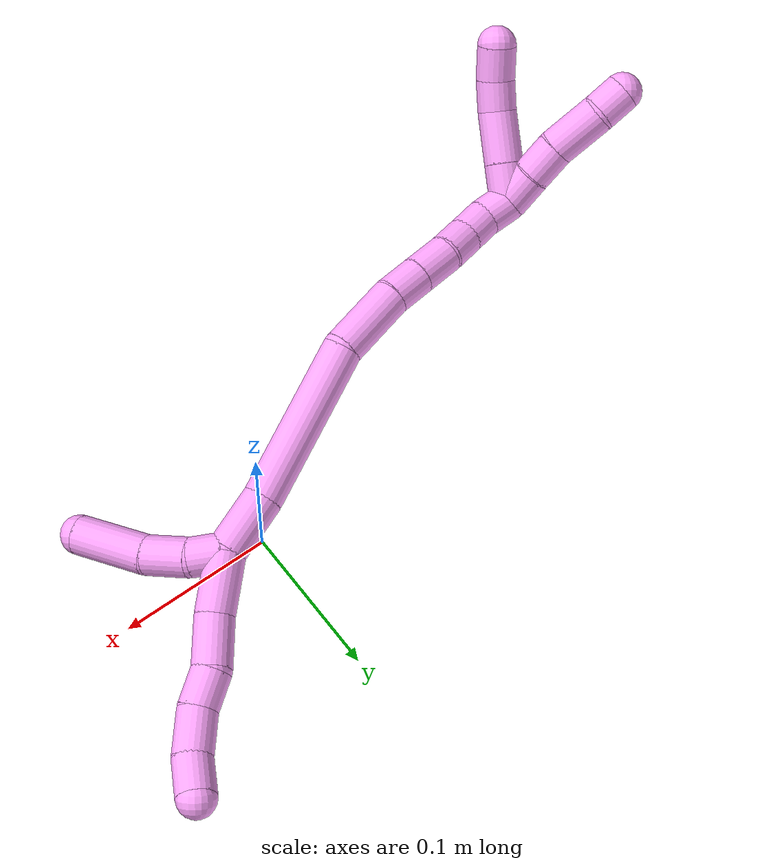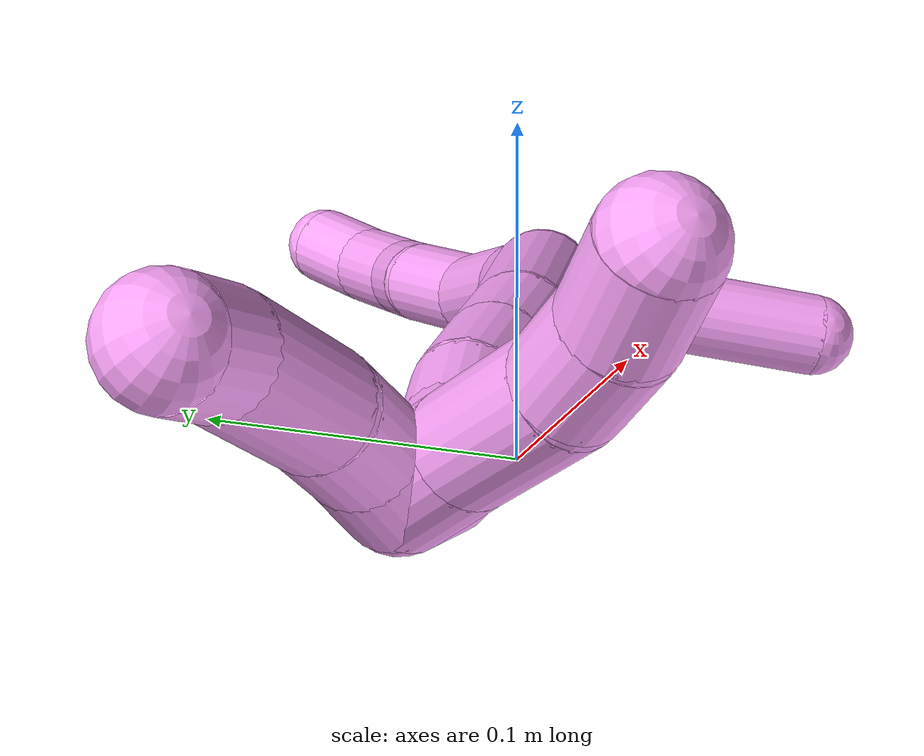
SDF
<sdf version="1.7">
 <world name="default">
  <model name="4">
   <static>0</static>
   <link name="4">
    <collision name="collision-cylinder-e_1_2_8">
     <pose>0.004906 0.003521 -0.018345 -2.95195 0.256826 -1.87193</pose>
     <geometry><cylinder><radius>0.0125</radius><length>0.038626</length></cylinder></geometry>
     <surface>
      <friction><ode><mu>1.16</mu><mu2>1.16</mu2><slip1>0</slip1><slip2>0</slip2></ode></friction>
      <contact><ode><kp>1e+06</kp><kd>1</kd><max_vel>0</max_vel><min_depth>0.001</min_depth></ode></contact>
     </surface>
    </collision>
    <visual name="visual-cylinder-e_1_2_8">
     <pose>0.004906 0.003521 -0.018345 -2.95195 0.256826 -1.87193</pose>
     <geometry><cylinder><radius>0.0125</radius><length>0.038626</length></cylinder></geometry>
     <material><ambient>1 0.65098 0.996078 1</ambient></material>
    </visual>
    <collision name="collision-cylinder-e_2_8_9">
     <pose>0.013044 0.014309 -0.051383 -2.68234 0.194728 -0.791596</pose>
     <geometry><cylinder><radius>0.0125</radius><length>0.033416</length></cylinder></geometry>
     <surface>
      <friction><ode><mu>1.16</mu><mu2>1.16</mu2><slip1>0</slip1><slip2>0</slip2></ode></friction>
      <contact><ode><kp>1e+06</kp><kd>1</kd><max_vel>0</max_vel><min_depth>0.001</min_depth></ode></contact>
     </surface>
    </collision>
    <visual name="visual-cylinder-e_2_8_9">
     <pose>0.013044 0.014309 -0.051383 -2.68234 0.194728 -0.791596</pose>
     <geometry><cylinder><radius>0.0125</radius><length>0.033416</length></cylinder></geometry>
     <material><ambient>1 0.65098 0.996078 1</ambient></material>
    </visual>
    <collision name="collision-cylinder-e_3_9_10">
     <pose>0.021517 0.024427 -0.076619 -2.87741 0.447338 -2.08432</pose>
     <geometry><cylinder><radius>0.0125</radius><length>0.024225</length></cylinder></geometry>
     <surface>
      <friction><ode><mu>1.16</mu><mu2>1.16</mu2><slip1>0</slip1><slip2>0</slip2></ode></friction>
      <contact><ode><kp>1e+06</kp><kd>1</kd><max_vel>0</max_vel><min_depth>0.001</min_depth></ode></contact>
     </surface>
    </collision>
    <visual name="visual-cylinder-e_3_9_10">
     <pose>0.021517 0.024427 -0.076619 -2.87741 0.447338 -2.08432</pose>
     <geometry><cylinder><radius>0.0125</radius><length>0.024225</length></cylinder></geometry>
     <material><ambient>1 0.65098 0.996078 1</ambient></material>
    </visual>
    <collision name="collision-cylinder-e_4_10_11">
     <pose>0.030307 0.03364 -0.09963 -2.66984 0.248378 -0.958043</pose>
     <geometry><cylinder><radius>0.0125</radius><length>0.028883</length></cylinder></geometry>
     <surface>
      <friction><ode><mu>1.16</mu><mu2>1.16</mu2><slip1>0</slip1><slip2>0</slip2></ode></friction>
      <contact><ode><kp>1e+06</kp><kd>1</kd><max_vel>0</max_vel><min_depth>0.001</min_depth></ode></contact>
     </surface>
    </collision>
    <visual name="visual-cylinder-e_4_10_11">
     <pose>0.030307 0.03364 -0.09963 -2.66984 0.248378 -0.958043</pose>
     <geometry><cylinder><radius>0.0125</radius><length>0.028883</length></cylinder></geometry>
     <material><ambient>1 0.65098 0.996078 1</ambient></material>
    </visual>
    <collision name="collision-cylinder-e_5_11_6">
     <pose>0.03494 0.047875 -0.12165 -2.45219 0.087277 -0.242053</pose>
     <geometry><cylinder><radius>0.0125</radius><length>0.02485</length></cylinder></geometry>
     <surface>
      <friction><ode><mu>1.16</mu><mu2>1.16</mu2><slip1>0</slip1><slip2>0</slip2></ode></friction>
      <contact><ode><kp>1e+06</kp><kd>1</kd><max_vel>0</max_vel><min_depth>0.001</min_depth></ode></contact>
     </surface>
    </collision>
    <visual name="visual-cylinder-e_5_11_6">
     <pose>0.03494 0.047875 -0.12165 -2.45219 0.087277 -0.242053</pose>
     <geometry><cylinder><radius>0.0125</radius><length>0.02485</length></cylinder></geometry>
     <material><ambient>1 0.65098 0.996078 1</ambient></material>
    </visual>
    <collision name="collision-cylinder-e_1_2_12">
     <pose>0.009549 -0.005235 -0.001714 1.88716 1.04759 1.34564</pose>
     <geometry><cylinder><radius>0.0125</radius><length>0.022047</length></cylinder></geometry>
     <surface>
      <friction><ode><mu>1.16</mu><mu2>1.16</mu2><slip1>0</slip1><slip2>0</slip2></ode></friction>
      <contact><ode><kp>1e+06</kp><kd>1</kd><max_vel>0</max_vel><min_depth>0.001</min_depth></ode></contact>
     </surface>
    </collision>
    <visual name="visual-cylinder-e_1_2_12">
     <pose>0.009549 -0.005235 -0.001714 1.88716 1.04759 1.34564</pose>
     <geometry><cylinder><radius>0.0125</radius><length>0.022047</length></cylinder></geometry>
     <material><ambient>1 0.65098 0.996078 1</ambient></material>
    </visual>
    <collision name="collision-cylinder-e_2_12_13">
     <pose>0.030206 -0.019959 -0.003202 1.54708 0.863719 0.845823</pose>
     <geometry><cylinder><radius>0.0125</radius><length>0.029224</length></cylinder></geometry>
     <surface>
      <friction><ode><mu>1.16</mu><mu2>1.16</mu2><slip1>0</slip1><slip2>0</slip2></ode></friction>
      <contact><ode><kp>1e+06</kp><kd>1</kd><max_vel>0</max_vel><min_depth>0.001</min_depth></ode></contact>
     </surface>
    </collision>
    <visual name="visual-cylinder-e_2_12_13">
     <pose>0.030206 -0.019959 -0.003202 1.54708 0.863719 0.845823</pose>
     <geometry><cylinder><radius>0.0125</radius><length>0.029224</length></cylinder></geometry>
     <material><ambient>1 0.65098 0.996078 1</ambient></material>
    </visual>
    <collision name="collision-cylinder-e_3_13_5">
     <pose>0.058469 -0.04593 0.002287 1.26166 0.781089 0.584185</pose>
     <geometry><cylinder><radius>0.0125</radius><length>0.048729</length></cylinder></geometry>
     <surface>
      <friction><ode><mu>1.16</mu><mu2>1.16</mu2><slip1>0</slip1><slip2>0</slip2></ode></friction>
      <contact><ode><kp>1e+06</kp><kd>1</kd><max_vel>0</max_vel><min_depth>0.001</min_depth></ode></contact>
     </surface>
    </collision>
    <visual name="visual-cylinder-e_3_13_5">
     <pose>0.058469 -0.04593 0.002287 1.26166 0.781089 0.584185</pose>
     <geometry><cylinder><radius>0.0125</radius><length>0.048729</length></cylinder></geometry>
     <material><ambient>1 0.65098 0.996078 1</ambient></material>
    </visual>
    <collision name="collision-cylinder-e_1_2_14">
     <pose>-0.012795 -0.003283 0.014915 0.216649 -0.697369 -0.079028</pose>
     <geometry><cylinder><radius>0.0125</radius><length>0.039847</length></cylinder></geometry>
     <surface>
      <friction><ode><mu>1.16</mu><mu2>1.16</mu2><slip1>0</slip1><slip2>0</slip2></ode></friction>
      <contact><ode><kp>1e+06</kp><kd>1</kd><max_vel>0</max_vel><min_depth>0.001</min_depth></ode></contact>
     </surface>
    </collision>
    <visual name="visual-cylinder-e_1_2_14">
     <pose>-0.012795 -0.003283 0.014915 0.216649 -0.697369 -0.079028</pose>
     <geometry><cylinder><radius>0.0125</radius><length>0.039847</length></cylinder></geometry>
     <material><ambient>1 0.65098 0.996078 1</ambient></material>
    </visual>
    <collision name="collision-cylinder-e_2_14_15">
     <pose>-0.052658 -0.008033 0.074268 0.033016 -0.546862 -0.00926</pose>
     <geometry><cylinder><radius>0.0125</radius><length>0.104107</length></cylinder></geometry>
     <surface>
      <friction><ode><mu>1.16</mu><mu2>1.16</mu2><slip1>0</slip1><slip2>0</slip2></ode></friction>
      <contact><ode><kp>1e+06</kp><kd>1</kd><max_vel>0</max_vel><min_depth>0.001</min_depth></ode></contact>
     </surface>
    </collision>
    <visual name="visual-cylinder-e_2_14_15">
     <pose>-0.052658 -0.008033 0.074268 0.033016 -0.546862 -0.00926</pose>
     <geometry><cylinder><radius>0.0125</radius><length>0.104107</length></cylinder></geometry>
     <material><ambient>1 0.65098 0.996078 1</ambient></material>
    </visual>
    <collision name="collision-cylinder-e_3_15_16">
     <pose>-0.097229 -0.013265 0.134114 0.239568 -0.834533 -0.10661</pose>
     <geometry><cylinder><radius>0.0125</radius><length>0.047241</length></cylinder></geometry>
     <surface>
      <friction><ode><mu>1.16</mu><mu2>1.16</mu2><slip1>0</slip1><slip2>0</slip2></ode></friction>
      <contact><ode><kp>1e+06</kp><kd>1</kd><max_vel>0</max_vel><min_depth>0.001</min_depth></ode></contact>
     </surface>
    </collision>
    <visual name="visual-cylinder-e_3_15_16">
     <pose>-0.097229 -0.013265 0.134114 0.239568 -0.834533 -0.10661</pose>
     <geometry><cylinder><radius>0.0125</radius><length>0.047241</length></cylinder></geometry>
     <material><ambient>1 0.65098 0.996078 1</ambient></material>
    </visual>
    <collision name="collision-cylinder-e_4_16_17">
     <pose>-0.124397 -0.018867 0.155848 0.282882 -0.972666 -0.150278</pose>
     <geometry><cylinder><radius>0.0125</radius><length>0.023393</length></cylinder></geometry>
     <surface>
      <friction><ode><mu>1.16</mu><mu2>1.16</mu2><slip1>0</slip1><slip2>0</slip2></ode></friction>
      <contact><ode><kp>1e+06</kp><kd>1</kd><max_vel>0</max_vel><min_depth>0.001</min_depth></ode></contact>
     </surface>
    </collision>
    <visual name="visual-cylinder-e_4_16_17">
     <pose>-0.124397 -0.018867 0.155848 0.282882 -0.972666 -0.150278</pose>
     <geometry><cylinder><radius>0.0125</radius><length>0.023393</length></cylinder></geometry>
     <material><ambient>1 0.65098 0.996078 1</ambient></material>
    </visual>
    <collision name="collision-cylinder-e_5_17_18">
     <pose>-0.144486 -0.022785 0.16891 0.299335 -0.97598 -0.159746</pose>
     <geometry><cylinder><radius>0.0125</radius><length>0.025169</length></cylinder></geometry>
     <surface>
      <friction><ode><mu>1.16</mu><mu2>1.16</mu2><slip1>0</slip1><slip2>0</slip2></ode></friction>
      <contact><ode><kp>1e+06</kp><kd>1</kd><max_vel>0</max_vel><min_depth>0.001</min_depth></ode></contact>
     </surface>
    </collision>
    <visual name="visual-cylinder-e_5_17_18">
     <pose>-0.144486 -0.022785 0.16891 0.299335 -0.97598 -0.159746</pose>
     <geometry><cylinder><radius>0.0125</radius><length>0.025169</length></cylinder></geometry>
     <material><ambient>1 0.65098 0.996078 1</ambient></material>
    </visual>
    <collision name="collision-cylinder-e_6_18_19">
     <pose>-0.162775 -0.028215 0.18104 0.556001 -0.891815 -0.271169</pose>
     <geometry><cylinder><radius>0.0125</radius><length>0.020216</length></cylinder></geometry>
     <surface>
      <friction><ode><mu>1.16</mu><mu2>1.16</mu2><slip1>0</slip1><slip2>0</slip2></ode></friction>
      <contact><ode><kp>1e+06</kp><kd>1</kd><max_vel>0</max_vel><min_depth>0.001</min_depth></ode></contact>
     </surface>
    </collision>
    <visual name="visual-cylinder-e_6_18_19">
     <pose>-0.162775 -0.028215 0.18104 0.556001 -0.891815 -0.271169</pose>
     <geometry><cylinder><radius>0.0125</radius><length>0.020216</length></cylinder></geometry>
     <material><ambient>1 0.65098 0.996078 1</ambient></material>
    </visual>
    <collision name="collision-cylinder-e_7_19_20">
     <pose>-0.178445 -0.034007 0.192189 0.40121 -0.895187 -0.194627</pose>
     <geometry><cylinder><radius>0.0125</radius><length>0.020001</length></cylinder></geometry>
     <surface>
      <friction><ode><mu>1.16</mu><mu2>1.16</mu2><slip1>0</slip1><slip2>0</slip2></ode></friction>
      <contact><ode><kp>1e+06</kp><kd>1</kd><max_vel>0</max_vel><min_depth>0.001</min_depth></ode></contact>
     </surface>
    </collision>
    <visual name="visual-cylinder-e_7_19_20">
     <pose>-0.178445 -0.034007 0.192189 0.40121 -0.895187 -0.194627</pose>
     <geometry><cylinder><radius>0.0125</radius><length>0.020001</length></cylinder></geometry>
     <material><ambient>1 0.65098 0.996078 1</ambient></material>
    </visual>
    <collision name="collision-cylinder-e_8_20_1">
     <pose>-0.194695 -0.035742 0.203277 -0.131963 -1.0039 0.0725</pose>
     <geometry><cylinder><radius>0.0125</radius><length>0.020026</length></cylinder></geometry>
     <surface>
      <friction><ode><mu>1.16</mu><mu2>1.16</mu2><slip1>0</slip1><slip2>0</slip2></ode></friction>
      <contact><ode><kp>1e+06</kp><kd>1</kd><max_vel>0</max_vel><min_depth>0.001</min_depth></ode></contact>
     </surface>
    </collision>
    <visual name="visual-cylinder-e_8_20_1">
     <pose>-0.194695 -0.035742 0.203277 -0.131963 -1.0039 0.0725</pose>
     <geometry><cylinder><radius>0.0125</radius><length>0.020026</length></cylinder></geometry>
     <material><ambient>1 0.65098 0.996078 1</ambient></material>
    </visual>
    <collision name="collision-cylinder-e_1_1_21">
     <pose>-0.208862 -0.029747 0.21656 -0.586764 -0.539648 0.166716</pose>
     <geometry><cylinder><radius>0.0125</radius><length>0.022264</length></cylinder></geometry>
     <surface>
      <friction><ode><mu>1.16</mu><mu2>1.16</mu2><slip1>0</slip1><slip2>0</slip2></ode></friction>
      <contact><ode><kp>1e+06</kp><kd>1</kd><max_vel>0</max_vel><min_depth>0.001</min_depth></ode></contact>
     </surface>
    </collision>
    <visual name="visual-cylinder-e_1_1_21">
     <pose>-0.208862 -0.029747 0.21656 -0.586764 -0.539648 0.166716</pose>
     <geometry><cylinder><radius>0.0125</radius><length>0.022264</length></cylinder></geometry>
     <material><ambient>1 0.65098 0.996078 1</ambient></material>
    </visual>
    <collision name="collision-cylinder-e_2_21_22">
     <pose>-0.221088 -0.019752 0.232866 -0.51323 -0.596153 0.160887</pose>
     <geometry><cylinder><radius>0.0125</radius><length>0.023175</length></cylinder></geometry>
     <surface>
      <friction><ode><mu>1.16</mu><mu2>1.16</mu2><slip1>0</slip1><slip2>0</slip2></ode></friction>
      <contact><ode><kp>1e+06</kp><kd>1</kd><max_vel>0</max_vel><min_depth>0.001</min_depth></ode></contact>
     </surface>
    </collision>
    <visual name="visual-cylinder-e_2_21_22">
     <pose>-0.221088 -0.019752 0.232866 -0.51323 -0.596153 0.160887</pose>
     <geometry><cylinder><radius>0.0125</radius><length>0.023175</length></cylinder></geometry>
     <material><ambient>1 0.65098 0.996078 1</ambient></material>
    </visual>
    <collision name="collision-cylinder-e_3_22_23">
     <pose>-0.238821 -0.007086 0.251624 -0.652936 -0.708578 0.249184</pose>
     <geometry><cylinder><radius>0.0125</radius><length>0.034503</length></cylinder></geometry>
     <surface>
      <friction><ode><mu>1.16</mu><mu2>1.16</mu2><slip1>0</slip1><slip2>0</slip2></ode></friction>
      <contact><ode><kp>1e+06</kp><kd>1</kd><max_vel>0</max_vel><min_depth>0.001</min_depth></ode></contact>
     </surface>
    </collision>
    <visual name="visual-cylinder-e_3_22_23">
     <pose>-0.238821 -0.007086 0.251624 -0.652936 -0.708578 0.249184</pose>
     <geometry><cylinder><radius>0.0125</radius><length>0.034503</length></cylinder></geometry>
     <material><ambient>1 0.65098 0.996078 1</ambient></material>
    </visual>
    <collision name="collision-cylinder-e_4_23_4">
     <pose>-0.257336 0.003326 0.268465 -0.364261 -0.81361 0.158364</pose>
     <geometry><cylinder><radius>0.0125</radius><length>0.020058</length></cylinder></geometry>
     <surface>
      <friction><ode><mu>1.16</mu><mu2>1.16</mu2><slip1>0</slip1><slip2>0</slip2></ode></friction>
      <contact><ode><kp>1e+06</kp><kd>1</kd><max_vel>0</max_vel><min_depth>0.001</min_depth></ode></contact>
     </surface>
    </collision>
    <visual name="visual-cylinder-e_4_23_4">
     <pose>-0.257336 0.003326 0.268465 -0.364261 -0.81361 0.158364</pose>
     <geometry><cylinder><radius>0.0125</radius><length>0.020058</length></cylinder></geometry>
     <material><ambient>1 0.65098 0.996078 1</ambient></material>
    </visual>
    <collision name="collision-cylinder-e_1_1_24">
     <pose>-0.201762 -0.03532 0.220556 0.02392 0.114943 0.001376</pose>
     <geometry><cylinder><radius>0.0125</radius><length>0.024063</length></cylinder></geometry>
     <surface>
      <friction><ode><mu>1.16</mu><mu2>1.16</mu2><slip1>0</slip1><slip2>0</slip2></ode></friction>
      <contact><ode><kp>1e+06</kp><kd>1</kd><max_vel>0</max_vel><min_depth>0.001</min_depth></ode></contact>
     </surface>
    </collision>
    <visual name="visual-cylinder-e_1_1_24">
     <pose>-0.201762 -0.03532 0.220556 0.02392 0.114943 0.001376</pose>
     <geometry><cylinder><radius>0.0125</radius><length>0.024063</length></cylinder></geometry>
     <material><ambient>1 0.65098 0.996078 1</ambient></material>
    </visual>
    <collision name="collision-cylinder-e_2_24_25">
     <pose>-0.198681 -0.036336 0.249269 0.04349 0.101043 0.002199</pose>
     <geometry><cylinder><radius>0.0125</radius><length>0.033733</length></cylinder></geometry>
     <surface>
      <friction><ode><mu>1.16</mu><mu2>1.16</mu2><slip1>0</slip1><slip2>0</slip2></ode></friction>
      <contact><ode><kp>1e+06</kp><kd>1</kd><max_vel>0</max_vel><min_depth>0.001</min_depth></ode></contact>
     </surface>
    </collision>
    <visual name="visual-cylinder-e_2_24_25">
     <pose>-0.198681 -0.036336 0.249269 0.04349 0.101043 0.002199</pose>
     <geometry><cylinder><radius>0.0125</radius><length>0.033733</length></cylinder></geometry>
     <material><ambient>1 0.65098 0.996078 1</ambient></material>
    </visual>
    <collision name="collision-cylinder-e_3_25_26">
     <pose>-0.195856 -0.035426 0.276003 -0.162955 0.110828 -0.009059</pose>
     <geometry><cylinder><radius>0.0125</radius><length>0.02033</length></cylinder></geometry>
     <surface>
      <friction><ode><mu>1.16</mu><mu2>1.16</mu2><slip1>0</slip1><slip2>0</slip2></ode></friction>
      <contact><ode><kp>1e+06</kp><kd>1</kd><max_vel>0</max_vel><min_depth>0.001</min_depth></ode></contact>
     </surface>
    </collision>
    <visual name="visual-cylinder-e_3_25_26">
     <pose>-0.195856 -0.035426 0.276003 -0.162955 0.110828 -0.009059</pose>
     <geometry><cylinder><radius>0.0125</radius><length>0.02033</length></cylinder></geometry>
     <material><ambient>1 0.65098 0.996078 1</ambient></material>
    </visual>
    <collision name="collision-cylinder-e_4_26_3">
     <pose>-0.193955 -0.030223 0.296282 -0.33281 0.071035 -0.011936</pose>
     <geometry><cylinder><radius>0.0125</radius><length>0.021874</length></cylinder></geometry>
     <surface>
      <friction><ode><mu>1.16</mu><mu2>1.16</mu2><slip1>0</slip1><slip2>0</slip2></ode></friction>
      <contact><ode><kp>1e+06</kp><kd>1</kd><max_vel>0</max_vel><min_depth>0.001</min_depth></ode></contact>
     </surface>
    </collision>
    <visual name="visual-cylinder-e_4_26_3">
     <pose>-0.193955 -0.030223 0.296282 -0.33281 0.071035 -0.011936</pose>
     <geometry><cylinder><radius>0.0125</radius><length>0.021874</length></cylinder></geometry>
     <material><ambient>1 0.65098 0.996078 1</ambient></material>
    </visual>
    <collision name="collision-sphere-3">
     <pose>-0.193179 -0.026659 0.306593 0 -0 0</pose>
     <geometry><sphere><radius>0.0125</radius></sphere></geometry>
     <surface>
      <friction><ode><mu>1.16</mu><mu2>1.16</mu2><slip1>0</slip1><slip2>0</slip2></ode></friction>
      <contact><ode><kp>1e+06</kp><kd>1</kd><max_vel>0</max_vel><min_depth>0.001</min_depth></ode></contact>
     </surface>
    </collision>
    <visual name="visual-sphere-3">
     <pose>-0.193179 -0.026659 0.306593 0 -0 0</pose>
     <geometry><sphere><radius>0.0125</radius></sphere></geometry>
     <material><ambient>1 0.65098 0.996078 1</ambient></material>
    </visual>
    <collision name="collision-sphere-26">
     <pose>-0.194731 -0.033787 0.285972 0 -0 0</pose>
     <geometry><sphere><radius>0.0125</radius></sphere></geometry>
     <surface>
      <friction><ode><mu>1.16</mu><mu2>1.16</mu2><slip1>0</slip1><slip2>0</slip2></ode></friction>
      <contact><ode><kp>1e+06</kp><kd>1</kd><max_vel>0</max_vel><min_depth>0.001</min_depth></ode></contact>
     </surface>
    </collision>
    <visual name="visual-sphere-26">
     <pose>-0.194731 -0.033787 0.285972 0 -0 0</pose>
     <geometry><sphere><radius>0.0125</radius></sphere></geometry>
     <material><ambient>1 0.65098 0.996078 1</ambient></material>
    </visual>
    <collision name="collision-sphere-25">
     <pose>-0.19698 -0.037065 0.266034 0 -0 0</pose>
     <geometry><sphere><radius>0.0125</radius></sphere></geometry>
     <surface>
      <friction><ode><mu>1.16</mu><mu2>1.16</mu2><slip1>0</slip1><slip2>0</slip2></ode></friction>
      <contact><ode><kp>1e+06</kp><kd>1</kd><max_vel>0</max_vel><min_depth>0.001</min_depth></ode></contact>
     </surface>
    </collision>
    <visual name="visual-sphere-25">
     <pose>-0.19698 -0.037065 0.266034 0 -0 0</pose>
     <geometry><sphere><radius>0.0125</radius></sphere></geometry>
     <material><ambient>1 0.65098 0.996078 1</ambient></material>
    </visual>
    <collision name="collision-sphere-24">
     <pose>-0.200383 -0.035606 0.232505 0 -0 0</pose>
     <geometry><sphere><radius>0.0125</radius></sphere></geometry>
     <surface>
      <friction><ode><mu>1.16</mu><mu2>1.16</mu2><slip1>0</slip1><slip2>0</slip2></ode></friction>
      <contact><ode><kp>1e+06</kp><kd>1</kd><max_vel>0</max_vel><min_depth>0.001</min_depth></ode></contact>
     </surface>
    </collision>
    <visual name="visual-sphere-24">
     <pose>-0.200383 -0.035606 0.232505 0 -0 0</pose>
     <geometry><sphere><radius>0.0125</radius></sphere></geometry>
     <material><ambient>1 0.65098 0.996078 1</ambient></material>
    </visual>
    <collision name="collision-sphere-4">
     <pose>-0.264625 0.00578 0.274902 0 -0 0</pose>
     <geometry><sphere><radius>0.0125</radius></sphere></geometry>
     <surface>
      <friction><ode><mu>1.16</mu><mu2>1.16</mu2><slip1>0</slip1><slip2>0</slip2></ode></friction>
      <contact><ode><kp>1e+06</kp><kd>1</kd><max_vel>0</max_vel><min_depth>0.001</min_depth></ode></contact>
     </surface>
    </collision>
    <visual name="visual-sphere-4">
     <pose>-0.264625 0.00578 0.274902 0 -0 0</pose>
     <geometry><sphere><radius>0.0125</radius></sphere></geometry>
     <material><ambient>1 0.65098 0.996078 1</ambient></material>
    </visual>
    <collision name="collision-sphere-23">
     <pose>-0.250047 0.000872 0.262028 0 -0 0</pose>
     <geometry><sphere><radius>0.0125</radius></sphere></geometry>
     <surface>
      <friction><ode><mu>1.16</mu><mu2>1.16</mu2><slip1>0</slip1><slip2>0</slip2></ode></friction>
      <contact><ode><kp>1e+06</kp><kd>1</kd><max_vel>0</max_vel><min_depth>0.001</min_depth></ode></contact>
     </surface>
    </collision>
    <visual name="visual-sphere-23">
     <pose>-0.250047 0.000872 0.262028 0 -0 0</pose>
     <geometry><sphere><radius>0.0125</radius></sphere></geometry>
     <material><ambient>1 0.65098 0.996078 1</ambient></material>
    </visual>
    <collision name="collision-sphere-22">
     <pose>-0.227594 -0.015044 0.241219 0 -0 0</pose>
     <geometry><sphere><radius>0.0125</radius></sphere></geometry>
     <surface>
      <friction><ode><mu>1.16</mu><mu2>1.16</mu2><slip1>0</slip1><slip2>0</slip2></ode></friction>
      <contact><ode><kp>1e+06</kp><kd>1</kd><max_vel>0</max_vel><min_depth>0.001</min_depth></ode></contact>
     </surface>
    </collision>
    <visual name="visual-sphere-22">
     <pose>-0.227594 -0.015044 0.241219 0 -0 0</pose>
     <geometry><sphere><radius>0.0125</radius></sphere></geometry>
     <material><ambient>1 0.65098 0.996078 1</ambient></material>
    </visual>
    <collision name="collision-sphere-21">
     <pose>-0.214582 -0.02446 0.224513 0 -0 0</pose>
     <geometry><sphere><radius>0.0125</radius></sphere></geometry>
     <surface>
      <friction><ode><mu>1.16</mu><mu2>1.16</mu2><slip1>0</slip1><slip2>0</slip2></ode></friction>
      <contact><ode><kp>1e+06</kp><kd>1</kd><max_vel>0</max_vel><min_depth>0.001</min_depth></ode></contact>
     </surface>
    </collision>
    <visual name="visual-sphere-21">
     <pose>-0.214582 -0.02446 0.224513 0 -0 0</pose>
     <geometry><sphere><radius>0.0125</radius></sphere></geometry>
     <material><ambient>1 0.65098 0.996078 1</ambient></material>
    </visual>
    <collision name="collision-sphere-1">
     <pose>-0.203142 -0.035035 0.208608 0 -0 0</pose>
     <geometry><sphere><radius>0.0125</radius></sphere></geometry>
     <surface>
      <friction><ode><mu>1.16</mu><mu2>1.16</mu2><slip1>0</slip1><slip2>0</slip2></ode></friction>
      <contact><ode><kp>1e+06</kp><kd>1</kd><max_vel>0</max_vel><min_depth>0.001</min_depth></ode></contact>
     </surface>
    </collision>
    <visual name="visual-sphere-1">
     <pose>-0.203142 -0.035035 0.208608 0 -0 0</pose>
     <geometry><sphere><radius>0.0125</radius></sphere></geometry>
     <material><ambient>1 0.65098 0.996078 1</ambient></material>
    </visual>
    <collision name="collision-sphere-6">
     <pose>0.036023 0.055748 -0.131201 0 -0 0</pose>
     <geometry><sphere><radius>0.0125</radius></sphere></geometry>
     <surface>
      <friction><ode><mu>1.16</mu><mu2>1.16</mu2><slip1>0</slip1><slip2>0</slip2></ode></friction>
      <contact><ode><kp>1e+06</kp><kd>1</kd><max_vel>0</max_vel><min_depth>0.001</min_depth></ode></contact>
     </surface>
    </collision>
    <visual name="visual-sphere-6">
     <pose>0.036023 0.055748 -0.131201 0 -0 0</pose>
     <geometry><sphere><radius>0.0125</radius></sphere></geometry>
     <material><ambient>1 0.65098 0.996078 1</ambient></material>
    </visual>
    <collision name="collision-sphere-11">
     <pose>0.033857 0.040002 -0.112099 0 -0 0</pose>
     <geometry><sphere><radius>0.0125</radius></sphere></geometry>
     <surface>
      <friction><ode><mu>1.16</mu><mu2>1.16</mu2><slip1>0</slip1><slip2>0</slip2></ode></friction>
      <contact><ode><kp>1e+06</kp><kd>1</kd><max_vel>0</max_vel><min_depth>0.001</min_depth></ode></contact>
     </surface>
    </collision>
    <visual name="visual-sphere-11">
     <pose>0.033857 0.040002 -0.112099 0 -0 0</pose>
     <geometry><sphere><radius>0.0125</radius></sphere></geometry>
     <material><ambient>1 0.65098 0.996078 1</ambient></material>
    </visual>
    <collision name="collision-sphere-10">
     <pose>0.026757 0.027278 -0.087161 0 -0 0</pose>
     <geometry><sphere><radius>0.0125</radius></sphere></geometry>
     <surface>
      <friction><ode><mu>1.16</mu><mu2>1.16</mu2><slip1>0</slip1><slip2>0</slip2></ode></friction>
      <contact><ode><kp>1e+06</kp><kd>1</kd><max_vel>0</max_vel><min_depth>0.001</min_depth></ode></contact>
     </surface>
    </collision>
    <visual name="visual-sphere-10">
     <pose>0.026757 0.027278 -0.087161 0 -0 0</pose>
     <geometry><sphere><radius>0.0125</radius></sphere></geometry>
     <material><ambient>1 0.65098 0.996078 1</ambient></material>
    </visual>
    <collision name="collision-sphere-9">
     <pose>0.016277 0.021575 -0.066077 0 -0 0</pose>
     <geometry><sphere><radius>0.0125</radius></sphere></geometry>
     <surface>
      <friction><ode><mu>1.16</mu><mu2>1.16</mu2><slip1>0</slip1><slip2>0</slip2></ode></friction>
      <contact><ode><kp>1e+06</kp><kd>1</kd><max_vel>0</max_vel><min_depth>0.001</min_depth></ode></contact>
     </surface>
    </collision>
    <visual name="visual-sphere-9">
     <pose>0.016277 0.021575 -0.066077 0 -0 0</pose>
     <geometry><sphere><radius>0.0125</radius></sphere></geometry>
     <material><ambient>1 0.65098 0.996078 1</ambient></material>
    </visual>
    <collision name="collision-sphere-2">
     <geometry><sphere><radius>0.0125</radius></sphere></geometry>
     <surface>
      <friction><ode><mu>1.16</mu><mu2>1.16</mu2><slip1>0</slip1><slip2>0</slip2></ode></friction>
      <contact><ode><kp>1e+06</kp><kd>1</kd><max_vel>0</max_vel><min_depth>0.001</min_depth></ode></contact>
     </surface>
    </collision>
    <visual name="visual-sphere-2">
     <geometry><sphere><radius>0.0125</radius></sphere></geometry>
     <material><ambient>1 0.65098 0.996078 1</ambient></material>
    </visual>
    <collision name="collision-sphere-19">
     <pose>-0.170642 -0.031565 0.186432 0 -0 0</pose>
     <geometry><sphere><radius>0.0125</radius></sphere></geometry>
     <surface>
      <friction><ode><mu>1.16</mu><mu2>1.16</mu2><slip1>0</slip1><slip2>0</slip2></ode></friction>
      <contact><ode><kp>1e+06</kp><kd>1</kd><max_vel>0</max_vel><min_depth>0.001</min_depth></ode></contact>
     </surface>
    </collision>
    <visual name="visual-sphere-19">
     <pose>-0.170642 -0.031565 0.186432 0 -0 0</pose>
     <geometry><sphere><radius>0.0125</radius></sphere></geometry>
     <material><ambient>1 0.65098 0.996078 1</ambient></material>
    </visual>
    <collision name="collision-sphere-8">
     <pose>0.009811 0.007042 -0.036689 0 -0 0</pose>
     <geometry><sphere><radius>0.0125</radius></sphere></geometry>
     <surface>
      <friction><ode><mu>1.16</mu><mu2>1.16</mu2><slip1>0</slip1><slip2>0</slip2></ode></friction>
      <contact><ode><kp>1e+06</kp><kd>1</kd><max_vel>0</max_vel><min_depth>0.001</min_depth></ode></contact>
     </surface>
    </collision>
    <visual name="visual-sphere-8">
     <pose>0.009811 0.007042 -0.036689 0 -0 0</pose>
     <geometry><sphere><radius>0.0125</radius></sphere></geometry>
     <material><ambient>1 0.65098 0.996078 1</ambient></material>
    </visual>
    <collision name="collision-sphere-12">
     <pose>0.019097 -0.010469 -0.003427 0 -0 0</pose>
     <geometry><sphere><radius>0.0125</radius></sphere></geometry>
     <surface>
      <friction><ode><mu>1.16</mu><mu2>1.16</mu2><slip1>0</slip1><slip2>0</slip2></ode></friction>
      <contact><ode><kp>1e+06</kp><kd>1</kd><max_vel>0</max_vel><min_depth>0.001</min_depth></ode></contact>
     </surface>
    </collision>
    <visual name="visual-sphere-12">
     <pose>0.019097 -0.010469 -0.003427 0 -0 0</pose>
     <geometry><sphere><radius>0.0125</radius></sphere></geometry>
     <material><ambient>1 0.65098 0.996078 1</ambient></material>
    </visual>
    <collision name="collision-sphere-13">
     <pose>0.041315 -0.029448 -0.002977 0 -0 0</pose>
     <geometry><sphere><radius>0.0125</radius></sphere></geometry>
     <surface>
      <friction><ode><mu>1.16</mu><mu2>1.16</mu2><slip1>0</slip1><slip2>0</slip2></ode></friction>
      <contact><ode><kp>1e+06</kp><kd>1</kd><max_vel>0</max_vel><min_depth>0.001</min_depth></ode></contact>
     </surface>
    </collision>
    <visual name="visual-sphere-13">
     <pose>0.041315 -0.029448 -0.002977 0 -0 0</pose>
     <geometry><sphere><radius>0.0125</radius></sphere></geometry>
     <material><ambient>1 0.65098 0.996078 1</ambient></material>
    </visual>
    <collision name="collision-sphere-5">
     <pose>0.075623 -0.062413 0.007551 0 -0 0</pose>
     <geometry><sphere><radius>0.0125</radius></sphere></geometry>
     <surface>
      <friction><ode><mu>1.16</mu><mu2>1.16</mu2><slip1>0</slip1><slip2>0</slip2></ode></friction>
      <contact><ode><kp>1e+06</kp><kd>1</kd><max_vel>0</max_vel><min_depth>0.001</min_depth></ode></contact>
     </surface>
    </collision>
    <visual name="visual-sphere-5">
     <pose>0.075623 -0.062413 0.007551 0 -0 0</pose>
     <geometry><sphere><radius>0.0125</radius></sphere></geometry>
     <material><ambient>1 0.65098 0.996078 1</ambient></material>
    </visual>
    <collision name="collision-sphere-14">
     <pose>-0.02559 -0.006566 0.02983 0 -0 0</pose>
     <geometry><sphere><radius>0.0125</radius></sphere></geometry>
     <surface>
      <friction><ode><mu>1.16</mu><mu2>1.16</mu2><slip1>0</slip1><slip2>0</slip2></ode></friction>
      <contact><ode><kp>1e+06</kp><kd>1</kd><max_vel>0</max_vel><min_depth>0.001</min_depth></ode></contact>
     </surface>
    </collision>
    <visual name="visual-sphere-14">
     <pose>-0.02559 -0.006566 0.02983 0 -0 0</pose>
     <geometry><sphere><radius>0.0125</radius></sphere></geometry>
     <material><ambient>1 0.65098 0.996078 1</ambient></material>
    </visual>
    <collision name="collision-sphere-15">
     <pose>-0.079727 -0.009501 0.118706 0 -0 0</pose>
     <geometry><sphere><radius>0.0125</radius></sphere></geometry>
     <surface>
      <friction><ode><mu>1.16</mu><mu2>1.16</mu2><slip1>0</slip1><slip2>0</slip2></ode></friction>
      <contact><ode><kp>1e+06</kp><kd>1</kd><max_vel>0</max_vel><min_depth>0.001</min_depth></ode></contact>
     </surface>
    </collision>
    <visual name="visual-sphere-15">
     <pose>-0.079727 -0.009501 0.118706 0 -0 0</pose>
     <geometry><sphere><radius>0.0125</radius></sphere></geometry>
     <material><ambient>1 0.65098 0.996078 1</ambient></material>
    </visual>
    <collision name="collision-sphere-16">
     <pose>-0.114731 -0.017028 0.149523 0 -0 0</pose>
     <geometry><sphere><radius>0.0125</radius></sphere></geometry>
     <surface>
      <friction><ode><mu>1.16</mu><mu2>1.16</mu2><slip1>0</slip1><slip2>0</slip2></ode></friction>
      <contact><ode><kp>1e+06</kp><kd>1</kd><max_vel>0</max_vel><min_depth>0.001</min_depth></ode></contact>
     </surface>
    </collision>
    <visual name="visual-sphere-16">
     <pose>-0.114731 -0.017028 0.149523 0 -0 0</pose>
     <geometry><sphere><radius>0.0125</radius></sphere></geometry>
     <material><ambient>1 0.65098 0.996078 1</ambient></material>
    </visual>
    <collision name="collision-sphere-17">
     <pose>-0.134063 -0.020705 0.162172 0 -0 0</pose>
     <geometry><sphere><radius>0.0125</radius></sphere></geometry>
     <surface>
      <friction><ode><mu>1.16</mu><mu2>1.16</mu2><slip1>0</slip1><slip2>0</slip2></ode></friction>
      <contact><ode><kp>1e+06</kp><kd>1</kd><max_vel>0</max_vel><min_depth>0.001</min_depth></ode></contact>
     </surface>
    </collision>
    <visual name="visual-sphere-17">
     <pose>-0.134063 -0.020705 0.162172 0 -0 0</pose>
     <geometry><sphere><radius>0.0125</radius></sphere></geometry>
     <material><ambient>1 0.65098 0.996078 1</ambient></material>
    </visual>
    <collision name="collision-sphere-18">
     <pose>-0.154909 -0.024864 0.175649 0 -0 0</pose>
     <geometry><sphere><radius>0.0125</radius></sphere></geometry>
     <surface>
      <friction><ode><mu>1.16</mu><mu2>1.16</mu2><slip1>0</slip1><slip2>0</slip2></ode></friction>
      <contact><ode><kp>1e+06</kp><kd>1</kd><max_vel>0</max_vel><min_depth>0.001</min_depth></ode></contact>
     </surface>
    </collision>
    <visual name="visual-sphere-18">
     <pose>-0.154909 -0.024864 0.175649 0 -0 0</pose>
     <geometry><sphere><radius>0.0125</radius></sphere></geometry>
     <material><ambient>1 0.65098 0.996078 1</ambient></material>
    </visual>
    <collision name="collision-sphere-20">
     <pose>-0.186249 -0.03645 0.197947 0 -0 0</pose>
     <geometry><sphere><radius>0.0125</radius></sphere></geometry>
     <surface>
      <friction><ode><mu>1.16</mu><mu2>1.16</mu2><slip1>0</slip1><slip2>0</slip2></ode></friction>
      <contact><ode><kp>1e+06</kp><kd>1</kd><max_vel>0</max_vel><min_depth>0.001</min_depth></ode></contact>
     </surface>
    </collision>
    <visual name="visual-sphere-20">
     <pose>-0.186249 -0.03645 0.197947 0 -0 0</pose>
     <geometry><sphere><radius>0.0125</radius></sphere></geometry>
     <material><ambient>1 0.65098 0.996078 1</ambient></material>
    </visual>
    <inertial>
     <pose>-0.085353 -0.011866 0.098699 0 -0 0</pose>
     <mass>0.75</mass>
     <inertia>
      <ixx>0.000112</ixx>
      <ixy>0</ixy>
      <ixz>0</ixz>
      <iyy>0.000143</iyy>
      <iyz>0</iyz>
      <izz>8.5e-05</izz>
     </inertia>
    </inertial>
   </link>
   <pose>0.032818 0.011411 0.0429 0.926721 -0.256052 -0.423771</pose>
  </model>
 </world>
</sdf>
